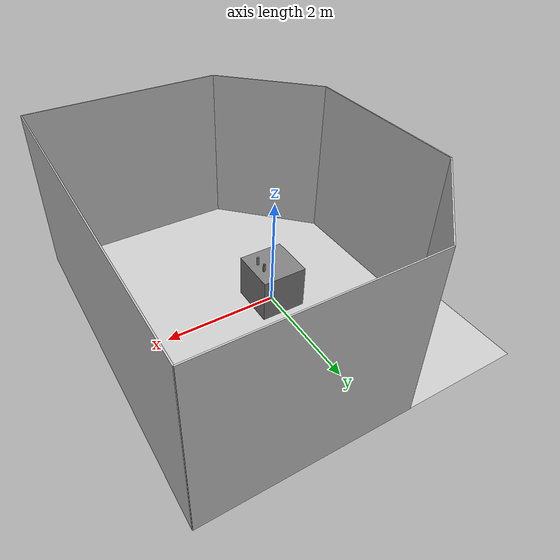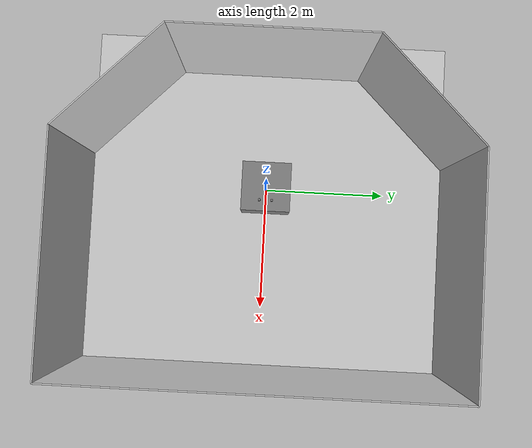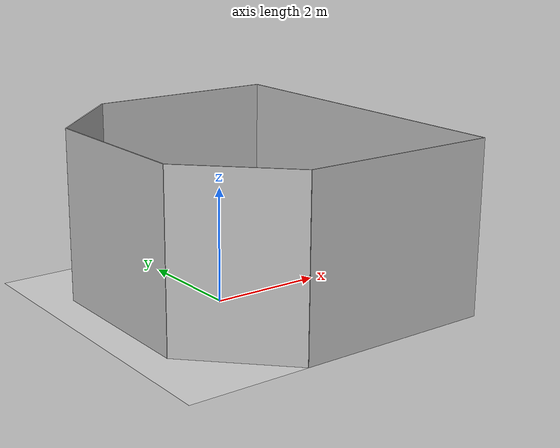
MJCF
<?xml version="1.0" ?>
<mujoco model="pegs_arena">
    <asset>
        <texture builtin="gradient" height="256" rgb1=".9 .9 1." rgb2=".2 .3 .4" type="skybox" width="256"/>
        <texture file="../textures/light-gray-floor-tile.png" type="2d" name="texplane"/>
        <material name="floorplane" reflectance="0.01" shininess="0.0" specular="0.0" texrepeat="2 2" texture="texplane" texuniform="true"/>
        <texture file="../textures/steel-scratched.png" type="cube" name="steel-metal"/>
        <texture file="../textures/brass-ambra.png" type="cube" name="brass-metal"/>
        <material name="smetal" reflectance="1.0" shininess="1.0" specular="1.0" texrepeat="1 1" texture="steel-metal" texuniform="true"/>
        <material name="bmetal" reflectance="1.0" shininess="1.0" specular="1.0" texrepeat="1 1" texture="brass-metal" texuniform="true"/>
        <!-- ceramic table texture and material-->
        <texture file="../textures/ceramic.png" type="cube" name="tex-ceramic"/>
        <material name="table_ceramic" reflectance="0.0" shininess="0.0" specular="0.2" texrepeat="1 1" texture="tex-ceramic"/>
        <!-- steel legs -->
        <texture file="../textures/steel-brushed.png" type="cube" name="tex-steel-brushed"/>
        <material name="table_legs_metal" reflectance="0.8" shininess="0.8" texrepeat="1 1" texture="tex-steel-brushed"/>
        <!-- plaster walls -->
        <texture file="../textures/light-gray-plaster.png" type="2d" name="tex-light-gray-plaster"/>
        <material name="walls_mat" reflectance="0.0" shininess="0.1" specular="0.1" texrepeat="3 3" texture="tex-light-gray-plaster" texuniform="true"/>
        <!-- added table texture and material for domain randomization -->
        <texture name="textable" builtin="flat" height="512" width="512" rgb1="0.5 0.5 0.5" rgb2="0.5 0.5 0.5"/>
        <material name="table_mat" texture="textable"/>
    </asset>
    <worldbody>
        <!-- Floor -->
        <geom condim="3" group="1" material="floorplane" name="floor" pos="0 0 0" size="3 3 .125" type="plane"/>
        <!-- Walls (visual only) -->
        <geom pos="-1.25 2.25 1.5" quat="0.6532815 0.6532815 0.2705981 0.2705981" size="1.06 1.5 0.01" type="box" conaffinity="0" contype="0" group="1" name="wall_leftcorner_visual" material="walls_mat"/>
        <geom pos="-1.25 -2.25 1.5" quat="0.6532815 0.6532815 -0.2705981 -0.2705981" size="1.06 1.5 0.01" type="box" conaffinity="0" contype="0" group="1" name="wall_rightcorner_visual" material="walls_mat"/>
        <geom pos="1.25 3 1.5" quat="0.7071 0.7071 0 0" size="1.75 1.5 0.01" type="box" conaffinity="0" contype="0" group="1" name="wall_left_visual" material="walls_mat"/>
        <geom pos="1.25 -3 1.5" quat="0.7071 -0.7071 0 0" size="1.75 1.5 0.01" type="box" conaffinity="0" contype="0" group="1" name="wall_right_visual" material="walls_mat"/>
        <geom pos="-2 0 1.5" quat="0.5 0.5 0.5 0.5" size="1.5 1.5 0.01" type="box" conaffinity="0" contype="0" group="1" name="wall_rear_visual" material="walls_mat"/>
        <geom pos="3 0 1.5" quat="0.5 0.5 -0.5 -0.5" size="3 1.5 0.01" type="box" conaffinity="0" contype="0" group="1" name="wall_front_visual" material="walls_mat"/>
        <!-- Table body -->
        <body name="table" pos="0 0 0.4">
            <geom pos="0 0 0" size="0.4 0.4 0.4" type="box" group="0" name="table_collision" friction="1 0.005 0.0001"/>
            <geom pos="0 0 0" size="0.4 0.4 0.4" type="box" conaffinity="0" contype="0" group="1" name="table_visual" material="table_ceramic"/>
            <site pos="0 0 0.4" name="table_top" size="0.001 0.001 0.001" rgba="0 0 0 0"/>
            <!-- Legs (visual only) -->
            <geom pos="0 0 0" size="0.05 0.1" type="cylinder" conaffinity="0" contype="0" group="1" name="table_leg1_visual" material="table_legs_metal"/>
            <geom pos="0 0 0" size="0.05 0.1" type="cylinder" conaffinity="0" contype="0" group="1" name="table_leg2_visual" material="table_legs_metal"/>
            <geom pos="0 0 0" size="0.05 0.1" type="cylinder" conaffinity="0" contype="0" group="1" name="table_leg3_visual" material="table_legs_metal"/>
            <geom pos="0 0 0" size="0.05 0.1" type="cylinder" conaffinity="0" contype="0" group="1" name="table_leg4_visual" material="table_legs_metal"/>
        </body>
        <body name="peg1" pos="0.23 0.1 0.85">
            <geom pos="0 0 0" size="0.016 0.016 0.1" type="box" group="0" friction="1 0.005 0.0001"/>
            <geom pos="0 0 0" size="0.016 0.016 0.1" type="box" conaffinity="0" contype="0" group="1" material="bmetal"/>
        </body>
        <body name="peg2" pos="0.23 -0.1 0.85">
            <geom pos="0 0 0" size="0.02 0.1" type="cylinder" group="0" friction="1 0.005 0.0001"/>
            <geom pos="0 0 0" size="0.02 0.1" type="cylinder" conaffinity="0" contype="0" group="1" material="smetal"/>
        </body>
        <light pos="1.0 1.0 1.5" dir="-0.2 -0.2 -1" specular="0.3 0.3 0.3" directional="true" castshadow="false"/>
        <!-- front view -->
        <camera mode="fixed" name="frontview" pos="1.6 0 1.45" quat="0.56 0.43 0.43 0.56"/>
        <!-- bird view -->
        <camera mode="fixed" name="birdview" pos="-0.2 0 3.0" quat="0.7071 0 0 0.7071"/>
        <!-- agent view -->
        <camera mode="fixed" name="agentview" pos="0.5 0 1.35" quat="0.653 0.271 0.271 0.653"/>
        <!-- side view -->
        <camera mode="fixed" name="sideview" pos="-0.05651774593317116 1.2761224129427358 1.4879572214102434" quat="0.009905065491771751 0.006877963156909582 0.5912228352893879 0.806418094001364"/>
        <camera mode="fixed" name="camera59" pos="-0.2322015623649758 0.4708581893046613 2.0186533479473208" quat="-0.2168165159495844 -0.03829954506832607 0.16425779057845163 0.9298753237737323"/>
        <camera mode="fixed" name="camera58" pos="0.06852625091552704 0.5205085522212505 2.0186533479473208" quat="0.06244808868346355 0.011031140208522095 0.16830267634192614 0.9527737168769939"/>
        <camera mode="fixed" name="camera57" pos="0.3461565529275362 0.3947158989264631 2.0186533479473208" quat="0.33633470585076114 0.05941183109763049 0.1578534486280925 0.8936198772364577"/>
        <camera mode="fixed" name="camera56" pos="0.5071110588017608 0.13587999867882347 2.0186533479473208" quat="0.5812564039869784 0.10267601498554144 0.13380998791138154 0.7575080938022685"/>
        <camera mode="fixed" name="camera55" pos="0.4971383179849305 -0.16875571928415975 2.0186533479473208" quat="0.77612069090483 0.13709780940618826 0.09824290088438803 0.5561602219695589"/>
        <camera mode="fixed" name="camera54" pos="0.3195997502295784 -0.41651050365289843 2.0186533479473208" quat="0.9041459850593856 0.15971283253707488 0.054215201199843244 0.30691620526263064"/>
        <camera mode="fixed" name="camera53" pos="0.034336642845825216 -0.5238759347002668 2.0186533479473208" quat="0.9543068340824842 0.16857349377135275 0.005518524791546439 0.031240771041795727"/>
        <camera mode="fixed" name="camera52" pos="-0.2624999999999999 -0.4546633369868303 2.0186533479473208" quat="-0.9222834193374819 -0.1629167189131445 0.04365340326630529 0.24712509740409258"/>
        <camera mode="fixed" name="camera51" pos="-0.499441808953665 0.7013678835804609 1.8762738575004465" quat="-0.273669057213377 -0.10518669692811632 0.3290526284092803 0.8561113260538246"/>
        <camera mode="fixed" name="camera50" pos="-0.16294950076530995 0.8454622929790425 1.8762738575004465" quat="-0.08543530965711954 -0.03283768400918032 0.343891785279347 0.8947190415641598"/>
        <camera mode="fixed" name="camera49" pos="0.20299364990732194 0.836751221538605 1.8762738575004465" quat="0.10670336706391759 0.041012216897472545 0.3430129320286014 0.8924324887244522"/>
        <camera mode="fixed" name="camera48" pos="0.5322485383842976 0.6768090735479416 1.8762738575004465" quat="0.29396503108727395 0.11298760242496984 0.32645623775930555 0.8493561773317214"/>
        <camera mode="fixed" name="camera47" pos="0.7653069500827475 0.39454315455230893 1.8762738575004465" quat="0.46779065060017105 0.17979874630883683 0.29497844717788074 0.7674589648214197"/>
        <camera mode="fixed" name="camera46" pos="0.8600468377406031 0.04096908030982411 1.8762738575004465" quat="0.6202353052418598 0.23839196049747724 0.2500182926185053 0.6504840671417199"/>
        <camera mode="fixed" name="camera45" pos="0.7993452921419095 -0.32000958201217894 1.8762738575004465" quat="0.7443313187633261 0.2860891678368238 0.19363073495738464 0.5037779703219905"/>
        <camera mode="fixed" name="camera44" pos="0.594173268395968 -0.6231509895464318 1.8762738575004465" quat="0.8344067255056693 0.3207103069826216 0.12839303902009616 0.3340460625491691"/>
        <camera mode="fixed" name="camera43" pos="0.28161273929277086 -0.8136665740443477 1.8762738575004465" quat="0.8863445147829181 0.3406729748686105 0.05728697642461478 0.14904615589786288"/>
        <camera mode="fixed" name="camera42" pos="-0.0818453524756981 -0.8571233090560383 1.8762738575004465" quat="-0.8977708040760438 -0.34506475244524715 0.016437460071543786 0.042766094307878824"/>
        <camera mode="fixed" name="camera41" pos="-0.43051104185869715 -0.7456669977186755 1.8762738575004465" quat="-0.8681633403437101 -0.33368490794936395 0.08941060161148558 0.2326236659434029"/>
        <camera mode="fixed" name="camera40" pos="-0.7057264611808978 0.8643579977309125 1.5361920849422372" quat="-0.2789789573829959 -0.17263043619116428 0.4843909694792489 0.782798738233021"/>
        <camera mode="fixed" name="camera39" pos="-0.3533601339473552 1.0584428194234268 1.5361920849422372" quat="-0.13330583994040276 -0.08248882106240144 0.5075741061286848 0.8202637845714614"/>
        <camera mode="fixed" name="camera38" pos="0.04493153166435585 1.1149644584983867 1.5361920849422372" quat="0.01673440162761593 0.010355143196006743 0.5141290205989042 0.8308568366715645"/>
        <camera mode="fixed" name="camera37" pos="0.43738355777716914 1.0265769380024525 1.5361920849422372" quat="0.16622642108394692 0.10285987103616222 0.5038409726719556 0.8142308641751034"/>
        <camera mode="fixed" name="camera36" pos="0.7729899299460197 0.8047677642987157 1.5361920849422372" quat="0.3102728320498812 0.19199489035836342 0.47704700071259043 0.7709305370352504"/>
        <camera mode="fixed" name="camera35" pos="1.0081327220864094 0.4783649244154007 1.5361920849422372" quat="0.4441546472943146 0.27484012134107877 0.4346248802287086 0.7023743820275454"/>
        <camera mode="fixed" name="camera34" pos="1.1122510099208882 0.08979018422004513 1.5361920849422372" quat="0.5634858736336691 0.34868153879934377 0.3779643677823613 0.6108083115487329"/>
        <camera mode="fixed" name="camera33" pos="1.0718127983521646 -0.31045436305648455 1.5361920849422372" quat="0.6643571978848442 0.4111000841549158 0.30892167230613565 0.499232047108668"/>
        <camera mode="fixed" name="camera32" pos="0.892073741233874 -0.6703499283607813 1.5361920849422372" quat="0.743464056692642 0.46005091424549865 0.22975864535307294 0.3713008478953869"/>
        <camera mode="fixed" name="camera31" pos="0.5963940771014711 -0.943121779544185 1.5361920849422372" quat="0.7982148946402806 0.4939303907672956 0.14306868241884707 0.23120576380384403"/>
        <camera mode="fixed" name="camera30" pos="0.2232025570286323 -1.0933184370475904 1.5361920849422372" quat="0.8268160640871517 0.5116286157642885 0.05169176282268049 0.08353633586137407"/>
        <camera mode="fixed" name="camera29" pos="-0.17899804464009342 -1.1014192145896715 1.5361920849422372" quat="-0.8283305853993347 -0.5125657920918353 0.04137858854368885 0.06686975799050467"/>
        <camera mode="fixed" name="camera28" pos="-0.5579347153234652 -0.96637127424672 1.5361920849422372" quat="-0.8027088425767815 -0.4967112176790311 0.133093369648576 0.21508518612576966"/>
        <camera mode="fixed" name="camera27" pos="-0.8272818264631194 0.9613189227467783 1.1546921376597752" quat="-0.26631778900551994 -0.22046324337146891 0.5941677566343919 0.7177497746353102"/>
        <camera mode="fixed" name="camera26" pos="-0.4633540134210406 1.180606771907478 1.1546921376597752" quat="-0.14232743586941007 -0.11782152536518908 0.622701736678511 0.7522185883961299"/>
        <camera mode="fixed" name="camera25" pos="-0.0474224321360801 1.2673911805585047 1.1546921376597752" quat="-0.014315199321807975 -0.011850411058833665 0.6336394341102441 0.7654312371455742"/>
        <camera mode="fixed" name="camera24" pos="0.3738315270691889 1.2119320447105522 1.1546921376597752" quat="0.11410155559804412 0.09445557172432578 0.6266717718806587 0.7570143583446312"/>
        <camera mode="fixed" name="camera23" pos="0.7531291256247373 1.020453728379146 1.1546921376597752" quat="0.2392940329857264 0.19809243245999988 0.6019956419309811 0.7272057958427266"/>
        <camera mode="fixed" name="camera22" pos="1.0479005274246234 0.7144464824256453 1.1546921376597752" quat="0.35772454845190477 0.29613160457586396 0.5603083414274124 0.6768478788950351"/>
        <camera mode="fixed" name="camera21" pos="1.2250625536901592 0.32825452193888727 1.1546921376597752" quat="0.46604649687678434 0.385802700777293 0.502787868563632 0.6073636196535851"/>
        <camera mode="fixed" name="camera20" pos="1.2647317186016582 -0.09477853971272927 1.1546921376597752" quat="0.5611989206536374 0.46457179854892844 0.4310596347314691 0.5207165017425697"/>
        <camera mode="fixed" name="camera19" pos="1.1624558193105576 -0.5071742893505168 1.1546921376597752" quat="0.6404930061154884 0.5302130436432682 0.3471505337059926 0.4193549962108144"/>
        <camera mode="fixed" name="camera18" pos="0.929713621532724 -0.8626481748451615 1.1546921376597752" quat="0.7016880639321287 0.5808715481875573 0.2534316657562826 0.306143372727564"/>
        <camera mode="fixed" name="camera17" pos="0.5926265593401637 -1.1213041749640553 1.1546921376597752" quat="0.7430548464262252 0.6151158060365945 0.15255133518184677 0.18428076115624778"/>
        <camera mode="fixed" name="camera16" pos="0.18902703938564244 -1.2541124630623366 1.1546921376597752" quat="0.7634244125901393 0.6319781442203692 0.04736021462780504 0.05721075066128819"/>
        <camera mode="fixed" name="camera15" pos="-0.23578761643286142 -1.2461675214689603 1.1546921376597752" quat="-0.7622211599776278 -0.6309820674110054 0.05916920911713328 0.0714759191069745"/>
        <camera mode="fixed" name="camera14" pos="-0.6341390406738848 -1.098361037510156 1.1546921376597752" quat="-0.7394790900564511 -0.6121557227100909 0.16402663154225905 0.19814282500032737"/>
        <camera mode="fixed" name="camera13" pos="-0.8670575877065603 1.0075391958470024 0.9123466631435289" quat="-0.25238629985847594 -0.23907280891114882 0.6443221662291994 0.6802031907853745"/>
        <camera mode="fixed" name="camera12" pos="-0.4856321029661963 1.237370418321116 0.9123466631435289" quat="-0.1348820709332352 -0.12776698096467018 0.6752647335898183 0.7128688884020811"/>
        <camera mode="fixed" name="camera11" pos="-0.049702505598218566 1.3283274266929832 0.9123466631435289" quat="-0.013566349443119968 -0.012850718402129422 0.6871256951180795 0.7253903633724701"/>
        <camera mode="fixed" name="camera10" pos="0.39180536994876264 1.270201812172718 0.9123466631435289" quat="0.10813272944711051 0.1024286792850723 0.6795698842024054 0.7174137843205796"/>
        <camera mode="fixed" name="camera9" pos="0.7893396204380987 1.0695172065816343 0.9123466631435289" quat="0.2267761976734785 0.214813651146634 0.6528108126678103 0.6891645531218336"/>
        <camera mode="fixed" name="camera8" pos="1.0982836494181483 0.7487971133680325 0.9123466631435289" quat="0.3390114325049798 0.3211284268100337 0.6076046373666577 0.6414409355051941"/>
        <camera mode="fixed" name="camera7" pos="1.28396363683396 0.34403701960058714 0.9123466631435289" quat="0.4416668948325427 0.41836876728209943 0.5452287927263298 0.5755915036897581"/>
        <camera mode="fixed" name="camera6" pos="1.3255400976412148 -0.09933549774809784 0.9123466631435289" quat="0.531841750403711 0.5037868586232108 0.46744589305449225 0.4934770284809354"/>
        <camera mode="fixed" name="camera5" pos="1.2183467668037773 -0.531559260465215 0.9123466631435289" quat="0.6069878414895135 0.5749689595718348 0.37645392464926763 0.3974178976779461"/>
        <camera mode="fixed" name="camera4" pos="0.9744143098011478 -0.9041243523002224 0.9123466631435289" quat="0.6649816926311929 0.6299036089557 0.27482413518382864 0.29012854664133075"/>
        <camera mode="fixed" name="camera3" pos="0.6211200808666965 -1.1752165488588442 0.9123466631435289" quat="0.7041845157310759 0.6670384654871019 0.16542837548488173 0.17464075387906206"/>
        <camera mode="fixed" name="camera2" pos="0.1981154710985721 -1.3144102676405625 0.9123466631435289" quat="0.7234885188659403 0.6853241737655208 0.05135794687836688 0.05421796916175554"/>
        <camera mode="fixed" name="camera1" pos="-0.2471242995744336 -1.3060833327653292 0.9123466631435289" quat="-0.7223482102301528 -0.6842440169236628 0.0641637526889205 0.06773690492008072"/>
        <camera mode="fixed" name="camera0" pos="-0.6646284848634503 -1.151170303941019 0.9123466631435289" quat="-0.7007958126229108 -0.6638285179935602 0.17787231530912345 0.1877776720514212"/>
        <camera mode="fixed" name="basecam" pos="1.20741 4.393969999999998e-05 1.7129" quat="0.6060726046562195 0.3643229603767395 0.3644557595252991 0.6059016585350037" />
        <camera mode="fixed" name="easy0" pos="0.4983123322367763 -0.0410465533357515 1.35" quat="0.6817659723848758 0.28095108121523327 0.26075442911057606 0.6231121701277498"/>
        <camera mode="fixed" name="easy1" pos="0.4995785262851374 0.020525498161319013 1.35" quat="0.6327191460409334 0.26822753803256516 0.2738254374191336 0.6728596435338066"/>
        <camera mode="fixed" name="easy2" pos="0.49939886571571235 -0.02451066955144056 1.35" quat="0.657831118651412 0.28212185593615136 0.2594872650823783 0.6483300370930234"/>
        <camera mode="fixed" name="easy3" pos="0.49911329905543983 0.029764319343722836 1.35" quat="0.6547939368694752 0.25367920700764673 0.28735560246628655 0.6513973579177174"/>
        <camera mode="fixed" name="easy4" pos="0.4998499046392511 0.012250421712397092 1.35" quat="0.6162972456660923 0.27914541659657993 0.26268654082368376 0.6879326439758455"/>
        <camera mode="fixed" name="easy5" pos="0.4965097638819035 -0.05897503175019456 1.35" quat="0.7035854733263216 0.2810337468684878 0.2606653322899878 0.5983653561056032"/>
        <camera mode="fixed" name="easy6" pos="0.49646142798145027 -0.0593805568062417 1.35" quat="0.6823634118045384 0.2901284198328851 0.2505032581466042 0.6224578635487538"/>
        <camera mode="fixed" name="easy7" pos="0.4994751421895779 -0.022903762457311617 1.35" quat="0.6899018968565507 0.2677010480069806 0.27434017429599206 0.6140920048143782"/>
        <camera mode="fixed" name="easy8" pos="0.4931006950740573 0.08277502351241928 1.35" quat="0.5667501400114642 0.2595477635184233 0.28206619930324095 0.7292927371503125"/>
        <camera mode="fixed" name="easy9" pos="0.4935454484237297 -0.08008052410055484 1.35" quat="0.722904061793047 0.28354881821502187 0.2579272184660927 0.5748767999374507"/>
        <camera mode="fixed" name="medium0" pos="0.4872151493094935 -0.17955240290143087 1.3566601454206575" quat="0.7333418448091692 0.32343176332303775 0.2044285884208697 0.5619702708879586"/>
        <camera mode="fixed" name="medium1" pos="0.4925579509077942 0.12263357311521839 1.3929296197576215" quat="0.5348818277622243 0.24969378082365115 0.29107126026352964 0.7528824394261919"/>
        <camera mode="fixed" name="medium2" pos="0.4894811531448388 -0.18030223437404497 1.3289406092947202" quat="0.7887222607988265 0.3012400311824596 0.23918335159297519 0.4795445373000615"/>
        <camera mode="fixed" name="medium3" pos="0.4932074839668437 -0.20179790907996817 1.3004695476192547" quat="0.7431774312817503 0.3279138585292326 0.1998293697610396 0.5479306799211333"/>
        <camera mode="fixed" name="medium4" pos="0.5280173185283417 -0.13983114230478583 1.3248753143519958" quat="0.6976722289507841 0.3157613724704313 0.2140396383724507 0.6064117823820914"/>
        <camera mode="fixed" name="medium5" pos="0.4475272579348853 0.15097799340021165 1.3952749011516985" quat="0.49557083533854057 0.24107196831353211 0.2989586853602439 0.7790491368989347"/>
        <camera mode="fixed" name="medium6" pos="0.455498973509672 -0.15058120103763656 1.3813797819702478" quat="0.7144901268755656 0.32551669751667955 0.20759899245417443 0.583476988892608"/>
        <camera mode="fixed" name="medium7" pos="0.508692579268784 -0.17567758777733067 1.3692531590077768" quat="0.71973499388851 0.3265811902800983 0.2064432866817698 0.5768079698752172"/>
        <camera mode="fixed" name="medium8" pos="0.48062168657363036 0.1833279741142216 1.342385504855818" quat="0.5573316368594442 0.20316199758791784 0.325053435676165 0.7365099546148586"/>
        <camera mode="fixed" name="medium9" pos="0.48762212376049846 0.16881520603813746 1.3290077607210444" quat="0.5799078229293535 0.20113993549234507 0.3217626810838207 0.7209149882733917"/>
        <camera mode="fixed" name="hard0" pos="0.3628783256819687 -0.23242472464688405 1.4075060062561078" quat="0.8427437767497936 0.3248567525822763 0.21394719393652295 0.37212580568657133"/>
        <camera mode="fixed" name="hard1" pos="0.47922656212075787 0.358735028002384 1.400578682492743" quat="0.34759128898661085 0.19616467949860728 0.32268317648529743 0.8582396413305514"/>
        <camera mode="fixed" name="hard2" pos="0.5437260658157792 -0.277868382496443 1.2693174601733488" quat="0.8250660902475853 0.3045468594991846 0.2218806145480276 0.421053618890204"/>
        <camera mode="fixed" name="hard3" pos="0.4671171466873298 0.3793149939455186 1.4289501110494378" quat="0.32598565489584774 0.1910439229964472 0.3235639515164232 0.8674917530255435"/>
        <camera mode="fixed" name="hard4" pos="0.3319760588661279 -0.2990283682262474 1.2351987598635166" quat="0.8176726184727546 0.3560647122794316 0.1292202763277019 0.4335107032762481"/>
        <camera mode="fixed" name="hard5" pos="0.38515506836468744 -0.2051341982890049 1.3824661104938014" quat="0.8268148530256384 0.30865585616281965 0.21916555088144102 0.4160231034202586"/>
        <camera mode="fixed" name="hard6" pos="0.3572307869288455 0.288749298846321 1.2777838359711886" quat="0.32785711718839744 0.19477013653341035 0.3368247509012522 0.8608852373016856"/>
        <camera mode="fixed" name="hard7" pos="0.44693967900064563 0.4040687024179371 1.2375892445841163" quat="0.31354181417726257 0.17807750356208404 0.33044105689721864 0.8722319882944997"/>
        <camera mode="fixed" name="hard8" pos="0.4620124925019742 0.32858686046210267 1.4186926458889155" quat="0.4912154229040369 0.14276620194759349 0.3473710638032147 0.7859125676020776"/>
        <camera mode="fixed" name="hard9" pos="0.3430140992665487 -0.29318445898803314 1.38059970719761" quat="0.8005590273792068 0.3652884113937753 0.1327048697231464 0.45613488984601175"/>
    </worldbody>
</mujoco>
